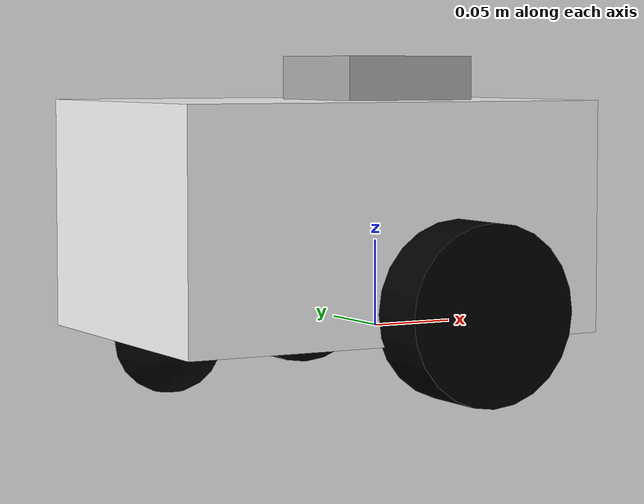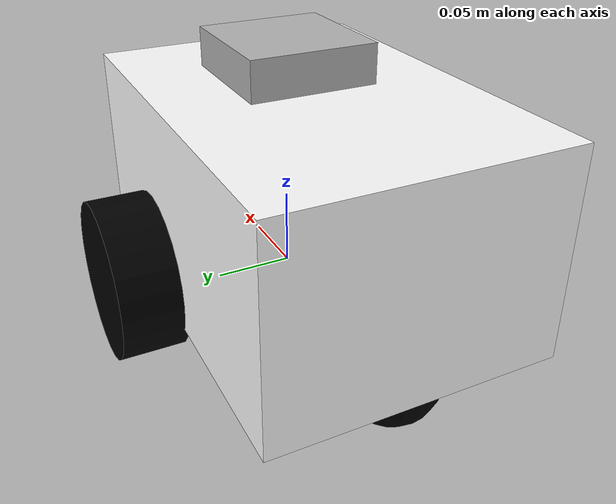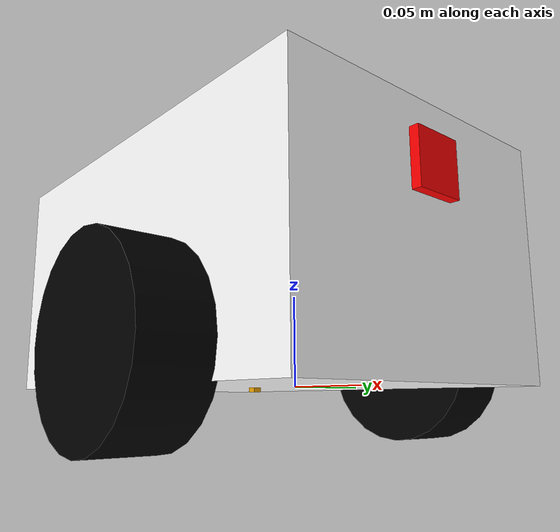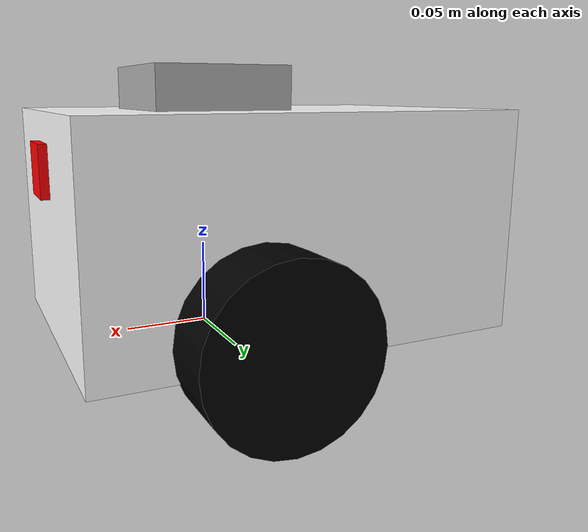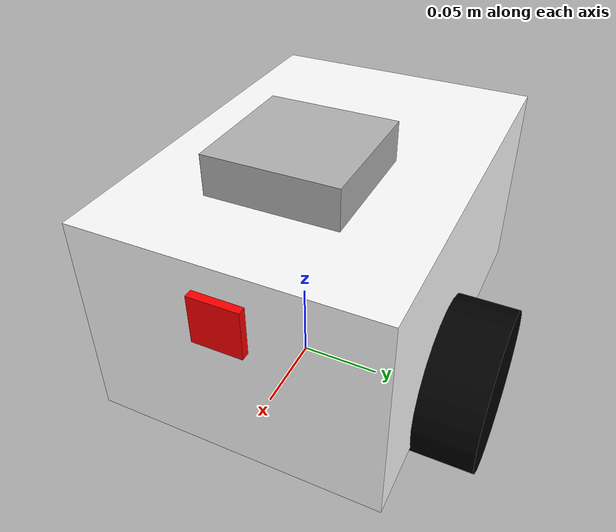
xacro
<?xml version="1.0"?>

<robot xmlns:xacro="http://www.ros.org/wiki/xacro" name="alphabot">
    <!-- Start GZ or Ignition depending on ROS 2 Version -->
    <xacro:arg name="is_ignition" default="true"/>

    <!-- Load Simulated or Real Hardware Interfaces -->
    <xacro:arg name="is_sim" default="true"/>

    <xacro:include filename="$(find alphabot_description)/urdf/alphabot_gazebo.xacro"/>
    <xacro:include filename="$(find alphabot_description)/urdf/alphabot_ros2_control.xacro"/>
    <xacro:include filename="$(find alphabot_description)/urdf/camera.xacro" />

    <material name="white">
        <color rgba="1 1 1 1"/>
    </material>
    <material name="black">
        <color rgba="0 0 0 1"/>
    </material>
    <material name="silver">
        <color rgba="0.79 0.82 0.93 1"/>
    </material>
    <material name="dark_grey">
        <color rgba="0.3 0.3 0.3 1"/>
    </material>
    <material name="red">
        <color rgba="1 0 0 1"/>
    </material>

    <link name="base_footprint"/>

    <link name="base_link">
        <inertial>
            <mass value="1.0"/>
            <origin xyz="0 0 0"/>
            <inertia ixx="0.002" ixy="0" ixz="0"
                    iyy="0.002" iyz="0"
                    izz="0.002"/>
        </inertial>
        <visual>
            <origin xyz="0.0 0.0 0.066" rpy="0.0 0.0 0.0"/>
            <geometry>
                <box size="0.256 0.180 0.132" />
            </geometry>
            <material name="white"/>
        </visual>
        <collision>
            <origin xyz="0.0 0.0 0.066" rpy="0.0 0.0 0.0"/>
            <geometry>
                <box size="0.256 0.180 0.132" />
            </geometry>
        </collision>
    </link>

    <link name="wheel_left_link">
        <inertial>
            <mass value="0.1"/>
            <origin xyz="0 0 0"/>
            <inertia ixx="0.0001" ixy="0" ixz="0"
                    iyy="0.0001" iyz="0"
                    izz="0.0001"/>
        </inertial>
        <visual>
            <origin xyz="0.0 0.0 0.0" rpy="1.5708 0.0 0.0"/>
            <geometry>
                <cylinder radius="0.0501" length="0.04"/>
            </geometry>
            <material name="black"/>
        </visual>
        <collision>
            <origin xyz="0.0 0.0 0.0" rpy="1.5708 0.0 0.0"/>
            <geometry>
                <cylinder radius="0.0501" length="0.04"/>
            </geometry>
        </collision>
    </link>

    <link name="wheel_right_link">
        <inertial>
            <mass value="0.1"/>
            <origin xyz="0 0 0"/>
            <inertia ixx="0.0001" ixy="0" ixz="0"
                    iyy="0.0001" iyz="0"
                    izz="0.0001"/>
        </inertial>
        <visual>
            <origin xyz="0.0 0.0 0.0" rpy="1.5708 0.0 0.0"/>
            <geometry>
                <cylinder radius="0.0501" length="0.04"/>
            </geometry>
            <material name="black"/>
        </visual>
        <collision>
            <origin xyz="0.0 0.0 0.0" rpy="1.5708 0.0 0.0"/>
            <geometry>
                <cylinder radius="0.0501" length="0.04"/>
            </geometry>
        </collision>
    </link>

    <link name="caster_wheel">
        <visual>
            <origin xyz="0.0 0.0 0.0" rpy="0.0 0.0 0.0"/>
            <geometry>
                <sphere radius="0.03"/>
            </geometry>
            <material name="black"/>
        </visual>
        <collision>
            <origin xyz="0.0 0.0 0.0" rpy="0.0 0.0 0.0"/>
            <geometry>
                <sphere radius="0.03"/>
            </geometry>
        </collision>
    </link>

    <!-- Define the joints -->
     <joint name="base_joint" type="fixed">
        <parent link="base_footprint"/>
        <child link="base_link"/>
        <origin xyz="-0.035 0.0 0.0" rpy="0.0 0.0 0.0"/>
    </joint>

    <joint name="wheel_right_joint" type="continuous">
        <parent link="base_link"/>
        <child link="wheel_right_link"/>
        <axis xyz="0.0 1.0 0.0"/>
        <origin xyz="0.035 -0.107 0.018" rpy="0.0 0.0 0.0"/>
    </joint>

    <joint name="wheel_left_joint" type="continuous">
        <parent link="base_link"/>
        <child link="wheel_left_link"/>
        <axis xyz="0.0 1.0 0.0"/>
        <origin xyz="0.035 0.107 0.018" rpy="0.0 0.0 0.0"/>
    </joint>

    <joint name="caster_joint" type="fixed">
        <parent link="base_link"/>
        <child link="caster_wheel"/>
        <origin xyz="-0.098 0.0 0.0" rpy="0.0 0.0 0.0"/>
    </joint>

    <!-- Sensors -->
     <link name="laser_link">
    <inertial>
      <origin xyz="-0.011945780406062 -0.000381929217680526 -0.0170649378129477" rpy="0 0 0" />
      <mass value="0.073084435549317" />
      <inertia ixx="1.96074931730795E-05" ixy="-3.62091076640009E-07" ixz="4.28230084046735E-07"
               iyy="2.40983835136327E-05" iyz="1.50180909250652E-08"
               izz="4.14184164228595E-05" />
    </inertial>
    <visual>
      <origin xyz="0 0 0" rpy="0 0 0" />
      <geometry>
        <box size="0.08 0.08 0.03" />
      </geometry>
    </visual>
    <collision>
      <origin xyz="0 0 0" rpy="0 0 0" />
      <geometry>
        <box size="0.08 0.08 0.03" />
      </geometry>
    </collision>
  </link>

  <link name="imu_link">
        <collision>
            <origin xyz="0 0 0" rpy="0 0 0"/>
            <geometry>
                <box size="0.005 0.005 0.005"/>
            </geometry>
        </collision>
        <visual>
            <origin xyz="0 0 0" rpy="0 0 0"/>
            <geometry>
                <box size="0.005 0.005 0.005"/>
            </geometry>
        </visual>
        <inertial>
            <mass value="0.001" />
            <origin xyz="0 0 0" rpy="0 0 0"/>
            <inertia ixx="0.00000015" ixy="0" ixz="0" iyy="0.00000015" iyz="0" izz="0.00000015" />
        </inertial>
    </link>

    <joint name="laser_joint" type="fixed">
        <origin xyz="0.035 0.0 0.142" rpy="0 0 0" />
        <parent link="base_link" />
        <child link="laser_link" />
        <axis xyz="0 0 0" />
    </joint>

    <joint name="imu_joint" type="fixed">
        <origin xyz="-0.0 0.0 0.0" rpy="0 0 0" />
        <parent link="base_link" />
        <child link="imu_link" />
        <axis xyz="0 0 0" />
    </joint>
</robot>

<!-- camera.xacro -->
<robot xmlns:xacro="http://www.ros.org/wiki/xacro">

    <joint name="camera_joint" type="fixed">
        <parent link="base_link"/>
        <child link="camera_link"/>
        <origin xyz="0.128 0 0.1" rpy="0 0 0"/>
    </joint>

    <link name="camera_link">
        <visual>
            <geometry>
                <box size="0.010 0.03 0.03"/>
            </geometry>
            <material name="red"/>
        </visual>
    </link>

    <joint name="camera_optical_joint" type="fixed">
        <parent link="camera_link"/>
        <child link="camera_link_optical"/>
        <origin xyz="0 0 0" rpy="${-3.14/2} 0 ${-3.14/2}"/>
    </joint>

    <link name="camera_link_optical"/>

    <gazebo reference="camera_link">
        <material>Gazebo/Red</material>

        <sensor name="camera" type="camera">
            <pose>0 0 0 0 0 0</pose>
            <visualize>true</visualize>
            <update_rate>10</update_rate>
            <camera>
                <horizontal_fov>1.089</horizontal_fov>
                <image>
                    <format>R8G8B8</format>
                    <width>640</width>
                    <height>480</height>
                </image>
                <clip>
                    <near>0.05</near>
                    <far>8.0</far>
                </clip>
            </camera>
            <plugin name="camera_controller" filename="libgazebo_ros_camera_system.so">
                <ros>
                    <namespace>/</namespace>
                </ros>
                <frame_name>camera_link_optical</frame_name>
            </plugin>
        </sensor>
    </gazebo>
</robot>
